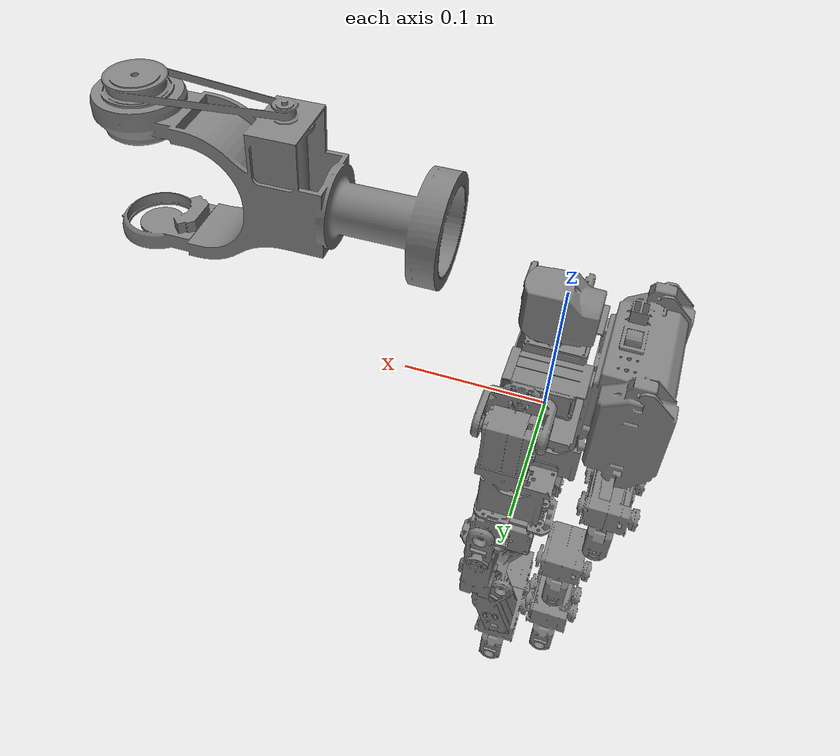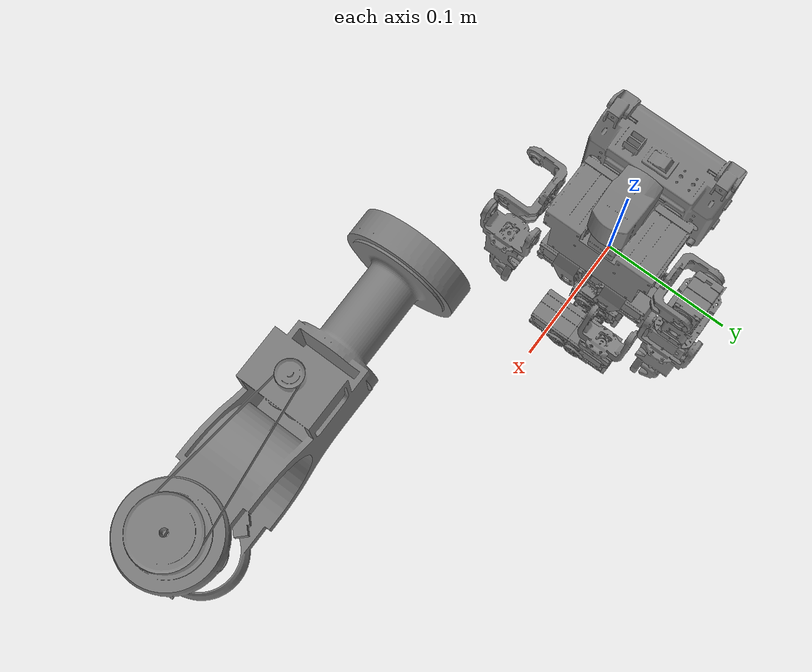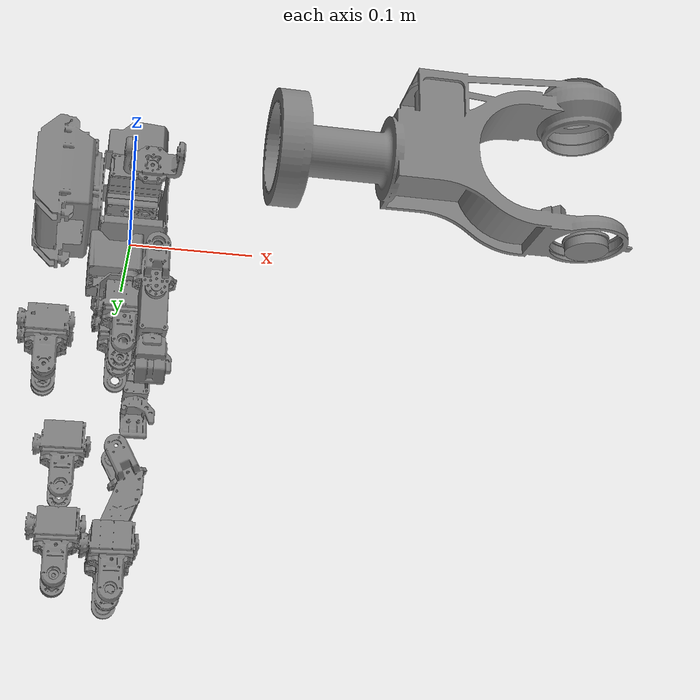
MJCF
<mujoco model="khr">
    <compiler angle="radian" />
    <size njmax="500" nconmax="100" />
    <asset>
        <mesh name="BODY_mesh" file="mesh/BODY_mesh.stl" />
        <mesh name="HEAD_LINK0_mesh" file="mesh/HEAD_LINK0_mesh.stl" />
        <mesh name="LARM_LINK0_mesh" file="mesh/LARM_LINK0_mesh.stl" />
        <mesh name="LARM_LINK1_mesh" file="mesh/LARM_LINK1_mesh.stl" />
        <mesh name="LARM_LINK2_mesh" file="mesh/LARM_LINK2_mesh.stl" />
        <mesh name="LLEG_LINK0_mesh" file="mesh/LLEG_LINK0_mesh.stl" />
        <mesh name="LLEG_LINK1_mesh" file="mesh/LLEG_LINK1_mesh.stl" />
        <mesh name="LLEG_LINK2_mesh" file="mesh/LLEG_LINK2_mesh.stl" />
        <mesh name="LLEG_LINK3_mesh" file="mesh/LLEG_LINK3_mesh.stl" />
        <mesh name="LLEG_LINK4_mesh" file="mesh/LLEG_LINK4_mesh.stl" />
        <mesh name="RARM_LINK0_mesh" file="mesh/RARM_LINK0_mesh.stl" />
        <mesh name="RARM_LINK1_mesh" file="mesh/RARM_LINK1_mesh.stl" />
        <mesh name="RARM_LINK2_mesh" file="mesh/RARM_LINK2_mesh.stl" />
        <mesh name="RLEG_LINK0_mesh" file="mesh/RLEG_LINK0_mesh.stl" />
        <mesh name="RLEG_LINK1_mesh" file="mesh/RLEG_LINK1_mesh.stl" />
        <mesh name="RLEG_LINK2_mesh" file="mesh/RLEG_LINK2_mesh.stl" />
        <mesh name="RLEG_LINK3_mesh" file="mesh/RLEG_LINK3_mesh.stl" />
        <mesh name="RLEG_LINK4_mesh" file="mesh/RLEG_LINK4_mesh.stl" />
    </asset>
    <worldbody>
        <geom type="mesh" mesh="BODY_mesh" />
        <geom pos="0 0 0.1288" type="mesh" mesh="HEAD_LINK0_mesh" />
        <body name="LARM_LINK0" pos="0.0115 0.049 0.0474">
            <inertial pos="0 0.014576 0" quat="-0.00503842 0.713846 -0.000205936 0.700285" mass="0.0153" diaginertia="2.75379e-06 2.26922e-06 1.64194e-06" />
            <joint name="LARM_JOINT0" pos="0 0 0" axis="0 1 0" limited="true" range="-1.5708 1.5708" damping="0.2" />
            <geom pos="0.0115 0.049 0.0474" type="mesh" mesh="LARM_LINK0_mesh" />
            <body name="LARM_LINK1" pos="0.01975 0.0255 0">
                <inertial pos="-0.02697 -0.000148 -0.050609" quat="0.707771 0.0169652 0.0207176 0.705934" mass="0.1091" diaginertia="0.000102002 8.97478e-05 2.48692e-05" />
                <joint name="LARM_JOINT1" pos="0 0 0" axis="1 0 0" limited="true" range="-1.5708 1.5708" damping="0.2" />
                <geom pos="0.01975 0.0255 0" type="mesh" mesh="LARM_LINK1_mesh" />
                <body name="LARM_LINK2" pos="-0.0153 -0.0197 -0.0875">
                    <inertial pos="0.000525 0.019115 -0.039067" quat="0.999573 -0.00581447 -0.00528218 0.0281457" mass="0.0315" diaginertia="2.06406e-05 1.94958e-05 3.50208e-06" />
                    <joint name="LARM_JOINT2" pos="0 0 0" axis="0 1 0" limited="true" range="-1.5708 1.5708" damping="0.2" />
                    <geom pos="-0.0153 -0.0197 -0.0875" type="mesh" mesh="LARM_LINK2_mesh" />
                </body>
            </body>
        </body>
        <body name="LLEG_LINK0" pos="0.018517 0.017 -0.06265">
            <inertial pos="-0.021734 0.011506 -0.014091" quat="0.998036 -0.0451436 -0.000602909 -0.0434149" mass="0.0699" diaginertia="1.69265e-05 1.59391e-05 9.57681e-06" />
            <joint name="LLEG_JOINT0" pos="0 0 0" axis="1 0 0" limited="true" range="-1.5708 1.5708" damping="0.2" />
            <geom pos="0.018517 0.017 -0.06265" type="mesh" mesh="LLEG_LINK0_mesh" />
            <body name="LLEG_LINK1" pos="-0.0192 -0.00825 -0.0385">
                <inertial pos="0.002871 0.018978 -0.033258" quat="0.931198 0.00105428 -0.0016993 -0.364509" mass="0.1031" diaginertia="5.55685e-05 5.46998e-05 1.421e-05" />
                <joint name="LLEG_JOINT1" pos="0 0 0" axis="0 1 0" limited="true" range="-1.5708 1.5708" damping="0.2" />
                <geom pos="-0.0192 -0.00825 -0.0385" type="mesh" mesh="LLEG_LINK1_mesh" />
                <body name="LLEG_LINK2" pos="0 0 -0.065">
                    <inertial pos="0.003613 0.016674 -0.031461" quat="0.999461 -0.00375676 0.0181526 -0.0271114" mass="0.0694" diaginertia="3.67907e-05 3.37496e-05 1.28918e-05" />
                    <joint name="LLEG_JOINT2" pos="0 0 0" axis="0 1 0" limited="true" range="-1.5708 1.5708" damping="0.2" />
                    <geom pos="0 0 -0.065" type="mesh" mesh="LLEG_LINK2_mesh" />
                    <body name="LLEG_LINK3" pos="0 0 -0.065">
                        <inertial pos="-0.000386 0.016666 -0.024369" quat="0.999451 -0.00265556 0.0289586 -0.0158523" mass="0.0691" diaginertia="1.89967e-05 1.73679e-05 1.22695e-05" />
                        <joint name="LLEG_JOINT3" pos="0 0 0" axis="0 1 0" limited="true" range="-1.5708 1.5708" damping="0.2" />
                        <geom pos="0 0 -0.065" type="mesh" mesh="LLEG_LINK3_mesh" />
                        <body name="LLEG_LINK4" pos="0.019683 0.00825 -0.0385">
                            <inertial pos="-0.020862 0.020902 -0.013459" quat="0.013771 0.703916 0.0136518 0.710018" mass="0.0419" diaginertia="3.78666e-05 2.75474e-05 1.31421e-05" />
                            <joint name="LLEG_JOINT4" pos="0 0 0" axis="1 0 0" limited="true" range="-1.5708 1.5708" damping="0.2" />
                            <geom pos="0.019683 0.00825 -0.0385" type="mesh" mesh="LLEG_LINK4_mesh" />
                        </body>
                    </body>
                </body>
            </body>
        </body>
        <body name="RARM_LINK0" pos="0.0115 -0.049 0.0474">
            <inertial pos="0 -0.014576 0" quat="-0.00844837 0.703733 0.0116925 0.710318" mass="0.0153" diaginertia="2.74564e-06 2.26354e-06 1.67573e-06" />
            <joint name="RARM_JOINT0" pos="0 0 0" axis="0 1 0" limited="true" range="-1.5708 1.5708" damping="0.2" />
            <geom pos="0.0115 -0.049 0.0474" type="mesh" mesh="RARM_LINK0_mesh" />
            <body name="RARM_LINK1" pos="0.01975 -0.0255 0">
                <inertial pos="-0.02697 0.000148 -0.050609" quat="0.71092 0.021909 0.0118767 0.702831" mass="0.1091" diaginertia="9.30231e-05 8.21573e-05 2.30776e-05" />
                <joint name="RARM_JOINT1" pos="0 0 0" axis="1 0 0" limited="true" range="-1.5708 1.5708" damping="0.2" />
                <geom pos="0.01975 -0.0255 0" type="mesh" mesh="RARM_LINK1_mesh" />
                <body name="RARM_LINK2" pos="-0.0153 0.0197 -0.0875">
                    <inertial pos="0.000525 -0.019115 -0.039067" quat="0.99931 0.0177481 -0.00189212 -0.0325716" mass="0.0315" diaginertia="2.01666e-05 1.83753e-05 4.00926e-06" />
                    <joint name="RARM_JOINT2" pos="0 0 0" axis="0 1 0" limited="true" range="-1.5708 1.5708" damping="0.2" />
                    <geom pos="-0.0153 0.0197 -0.0875" type="mesh" mesh="RARM_LINK2_mesh" />
                </body>
            </body>
        </body>
        <body name="RLEG_LINK0" pos="0.018517 -0.017 -0.06265">
            <inertial pos="-0.021734 -0.011506 -0.014091" quat="0.987031 -0.011963 0.00725075 0.159921" mass="0.0699" diaginertia="1.68751e-05 1.58364e-05 8.89564e-06" />
            <joint name="RLEG_JOINT0" pos="0 0 0" axis="1 0 0" limited="true" range="-1.5708 1.5708" damping="0.2" />
            <geom pos="0.018517 -0.017 -0.06265" type="mesh" mesh="RLEG_LINK0_mesh" />
            <body name="RLEG_LINK1" pos="-0.0192 0.00825 -0.0385">
                <inertial pos="0.002871 -0.018978 -0.033258" quat="0.983355 -0.00193715 -0.00157884 0.181676" mass="0.1031" diaginertia="5.54373e-05 5.49002e-05 1.5722e-05" />
                <joint name="RLEG_JOINT1" pos="0 0 0" axis="0 1 0" limited="true" range="-1.5708 1.5708" damping="0.2" />
                <geom pos="-0.0192 0.00825 -0.0385" type="mesh" mesh="RLEG_LINK1_mesh" />
                <body name="RLEG_LINK2" pos="0 0 -0.065">
                    <inertial pos="0.003613 -0.016674 -0.031461" quat="0.999847 -0.00198304 0.0173596 -0.000115066" mass="0.0694" diaginertia="3.88465e-05 3.51565e-05 1.38175e-05" />
                    <joint name="RLEG_JOINT2" pos="0 0 0" axis="0 1 0" limited="true" range="-1.5708 1.5708" damping="0.2" />
                    <geom pos="0 0 -0.065" type="mesh" mesh="RLEG_LINK2_mesh" />
                    <body name="RLEG_LINK3" pos="0 0 -0.065">
                        <inertial pos="-0.000386 -0.016666 -0.024369" quat="0.999279 0.00669384 -0.0053839 -0.0369715" mass="0.0691" diaginertia="2.08066e-05 1.81694e-05 1.18276e-05" />
                        <joint name="RLEG_JOINT3" pos="0 0 0" axis="0 1 0" limited="true" range="-1.5708 1.5708" damping="0.2" />
                        <geom pos="0 0 -0.065" type="mesh" mesh="RLEG_LINK3_mesh" />
                        <body name="RLEG_LINK4" pos="0.019683 -0.00825 -0.0385">
                            <inertial pos="-0.020862 -0.020902 -0.013459" quat="-0.0341099 0.708146 -0.0101234 0.705169" mass="0.0419" diaginertia="3.93111e-05 2.99861e-05 1.24209e-05" />
                            <joint name="RLEG_JOINT4" pos="0 0 0" axis="1 0 0" limited="true" range="-1.5708 1.5708" damping="0.2" />
                            <geom pos="0.019683 -0.00825 -0.0385" type="mesh" mesh="RLEG_LINK4_mesh" />
                        </body>
                    </body>
                </body>
            </body>
        </body>
    </worldbody>
</mujoco>
